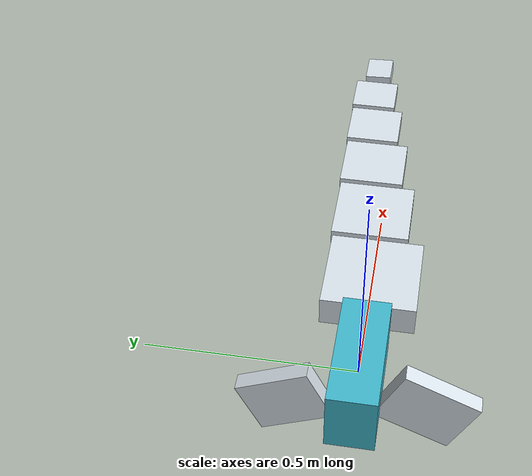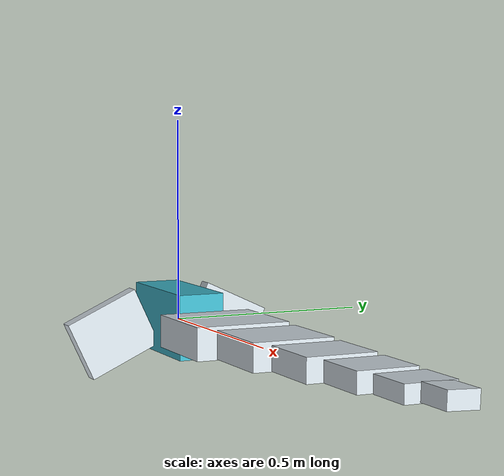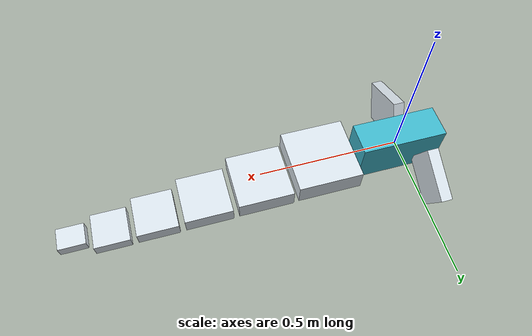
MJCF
<mujoco model="criatura">
  <compiler angle="degree" autolimits="true"/>
  <option timestep="0.002083" gravity="0 0 0" integrator="implicitfast"/>
  <default>
    <geom type="box" density="300.0" rgba="0.85 0.89 0.92 1"/>
    <joint type="hinge"/>
    <motor ctrlrange="-1 1"/>
  </default>
  <worldbody>
    <body name="p0_n0" pos="0.00000 0.00000 0.00000" quat="1.000000 0.000000 0.000000 0.000000">
      <freejoint name="raiz"/>
      <geom name="g_p0_n0" size="0.15000 0.05733 0.08000" rgba="0.25 0.72 0.8 1"/>
      <body name="p1_n1" pos="0.28243 0.00000 0.00062" quat="1.000000 0.000000 0.000000 0.000000">
        <joint name="p1_n1_j0" axis="0.0000 1.0000 0.0000" pos="-0.13243 0 0" range="-60.00 60.00" damping="0.8938"/>
        <joint name="p1_n1_j1" axis="0.0000 0.0000 1.0000" pos="-0.13243 0 0" range="-60.00 60.00" damping="0.8938"/>
        <geom name="g_p1_n1" size="0.11243 0.11513 0.03882"/>
        <body name="p2_n1" pos="0.22800 0.02323 0.00000" quat="1.000000 0.000000 0.000000 0.000000">
          <joint name="p2_n1_j0" axis="0.0000 1.0000 0.0000" pos="-0.11557 0 0" range="-60.00 60.00" damping="0.6458"/>
          <joint name="p2_n1_j1" axis="0.0000 0.0000 1.0000" pos="-0.11557 0 0" range="-60.00 60.00" damping="0.6458"/>
          <geom name="g_p2_n1" size="0.09557 0.09786 0.03299"/>
          <body name="p3_n1" pos="0.19680 0.01974 0.00000" quat="1.000000 0.000000 0.000000 0.000000">
            <joint name="p3_n1_j0" axis="0.0000 1.0000 0.0000" pos="-0.10123 0 0" range="-60.00 60.00" damping="0.4666"/>
            <joint name="p3_n1_j1" axis="0.0000 0.0000 1.0000" pos="-0.10123 0 0" range="-60.00 60.00" damping="0.4666"/>
            <geom name="g_p3_n1" size="0.08123 0.08318 0.02805"/>
            <body name="p4_n1" pos="0.17028 0.01678 0.00000" quat="1.000000 0.000000 0.000000 0.000000">
              <joint name="p4_n1_j0" axis="0.0000 1.0000 0.0000" pos="-0.08905 0 0" range="-60.00 60.00" damping="0.3371"/>
              <joint name="p4_n1_j1" axis="0.0000 0.0000 1.0000" pos="-0.08905 0 0" range="-60.00 60.00" damping="0.3371"/>
              <geom name="g_p4_n1" size="0.06905 0.07071 0.02384"/>
              <body name="p5_n1" pos="0.14774 0.01427 0.00000" quat="1.000000 0.000000 0.000000 0.000000">
                <joint name="p5_n1_j0" axis="0.0000 1.0000 0.0000" pos="-0.07869 0 0" range="-60.00 60.00" damping="0.2436"/>
                <joint name="p5_n1_j1" axis="0.0000 0.0000 1.0000" pos="-0.07869 0 0" range="-60.00 60.00" damping="0.2436"/>
                <geom name="g_p5_n1" size="0.05869 0.06010 0.02026"/>
                <body name="p6_n2" pos="0.12384 0.00000 0.00534" quat="0.999790 -0.020483 0.000000 0.000000">
                  <joint name="p6_n2_j0" axis="0.0000 1.0000 0.0000" pos="-0.06515 0 0" range="-37.10 37.10" damping="0.1445"/>
                  <joint name="p6_n2_j1" axis="0.0000 0.0000 1.0000" pos="-0.06515 0 0" range="-37.10 37.10" damping="0.1445"/>
                  <geom name="g_p6_n2" size="0.04515 0.03612 0.02000"/>
                </body>
              </body>
            </body>
          </body>
        </body>
      </body>
      <body name="p7_n3" pos="-0.07597 0.15649 -0.02226" quat="0.596368 0.379928 0.596368 0.379928">
        <joint name="p7_n3_j0" axis="0.0000 1.0000 0.0000" pos="-0.10941 0 0" range="-46.39 46.39" damping="0.2861"/>
        <joint name="p7_n3_j1" axis="0.0000 0.0000 1.0000" pos="-0.10941 0 0" range="-46.39 46.39" damping="0.2861"/>
        <geom name="g_p7_n3" size="0.08941 0.07153 0.02000"/>
      </body>
      <body name="p8_n3" pos="-0.04500 -0.16256 -0.03307" quat="0.596368 -0.379928 0.596368 -0.379928">
        <joint name="p8_n3_j0" axis="0.0000 -1.0000 0.0000" pos="-0.11610 0 0" range="-46.39 46.39" damping="0.3075"/>
        <joint name="p8_n3_j1" axis="0.0000 0.0000 1.0000" pos="-0.11610 0 0" range="-46.39 46.39" damping="0.3075"/>
        <geom name="g_p8_n3" size="0.09610 0.07688 0.02000"/>
      </body>
    </body>
  </worldbody>
  <actuator>
    <motor name="m_p1_n1_j0" joint="p1_n1_j0" gear="17.8763"/>
    <motor name="m_p1_n1_j1" joint="p1_n1_j1" gear="17.8763"/>
    <motor name="m_p2_n1_j0" joint="p2_n1_j0" gear="12.9156"/>
    <motor name="m_p2_n1_j1" joint="p2_n1_j1" gear="12.9156"/>
    <motor name="m_p3_n1_j0" joint="p3_n1_j0" gear="9.3315"/>
    <motor name="m_p3_n1_j1" joint="p3_n1_j1" gear="9.3315"/>
    <motor name="m_p4_n1_j0" joint="p4_n1_j0" gear="6.7420"/>
    <motor name="m_p4_n1_j1" joint="p4_n1_j1" gear="6.7420"/>
    <motor name="m_p5_n1_j0" joint="p5_n1_j0" gear="4.8711"/>
    <motor name="m_p5_n1_j1" joint="p5_n1_j1" gear="4.8711"/>
    <motor name="m_p6_n2_j0" joint="p6_n2_j0" gear="2.8894"/>
    <motor name="m_p6_n2_j1" joint="p6_n2_j1" gear="2.8894"/>
    <motor name="m_p7_n3_j0" joint="p7_n3_j0" gear="5.7220"/>
    <motor name="m_p7_n3_j1" joint="p7_n3_j1" gear="5.7220"/>
    <motor name="m_p8_n3_j0" joint="p8_n3_j0" gear="-6.1505"/>
    <motor name="m_p8_n3_j1" joint="p8_n3_j1" gear="-6.1505"/>
  </actuator>
</mujoco>
